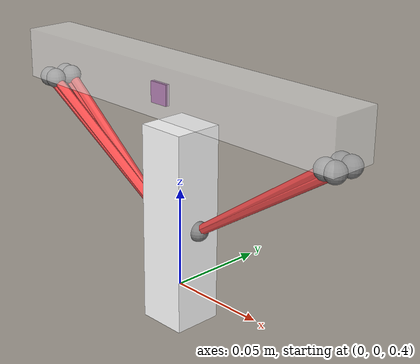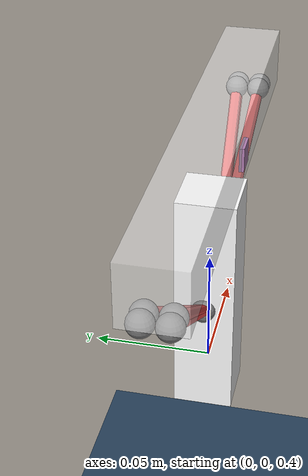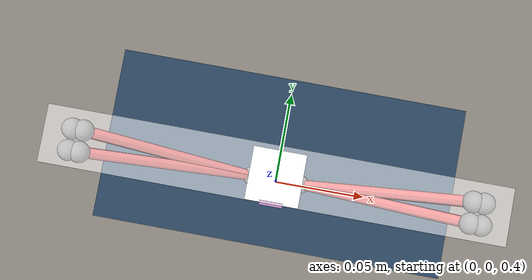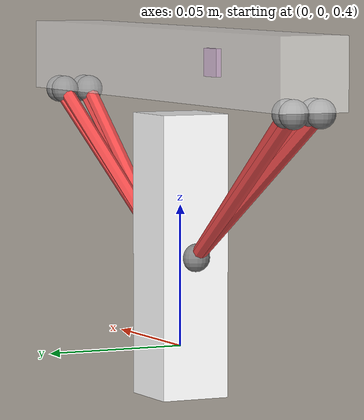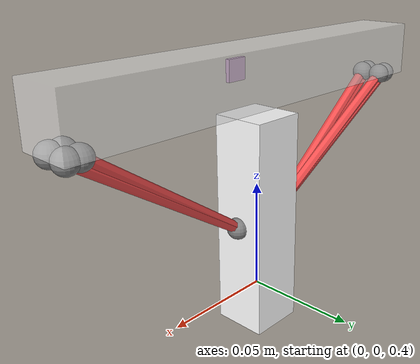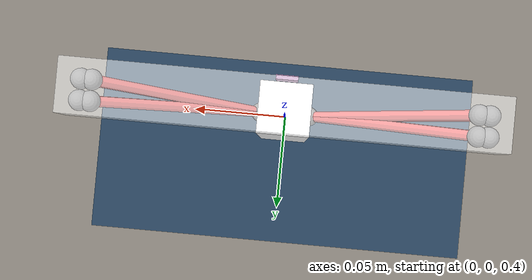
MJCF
<mujoco>
    <!-- Global Options -->
    <option gravity="0 0 -9.81" timestep="0.0001"/>

    <!-- Muscle Class -->
    <default>
        <tendon width="0.0025" rgba="0.95 0.3 0.3 1" limited="false"></tendon>
        <default class="muscle">
            <muscle ctrllimited="true" ctrlrange="0 1" force="10" range="0.4 1.05"></muscle>
        </default>
    </default>

    <!-- Load built-in textures for floor and sky -->
    <asset>
        <texture type="skybox" builtin="gradient" rgb1="0.2 0.2 0.2" rgb2="0 0 0" width="512" height="512"/>

        <texture type="2d" name="groundplane" builtin="checker" mark="edge" rgb1="0.2 0.3 0.4" rgb2="0.1 0.2 0.3"
            markrgb="0.8 0.8 0.8" width="300" height="300"/>
        <material name="groundplane" texture="groundplane" texuniform="true" texrepeat="5 5" reflectance="0.2"/>
    </asset>

    <!-- Parent world for everything to go into -->
    <worldbody>
        <!-- Floor geomerty placed in parent world -->
        <geom name="floor" size="1 1 0.1" type="plane" material="groundplane" pos="0 0 .25"/>
        <!-- Placing top-down light in the parent world -->
        <light name="top-down-light" pos="0 0 2" diffuse="1 1 1" directional="true" dir="-0.25 -0.25 -1"/>
        <!-- Placing Camera at Desired Location -->
        <camera name="fixed" pos="0 -0.3 0.5" xyaxes="1 0 0 0 0.2 1"/>
        <camera name='Angle2' pos="0.167 -0.168 0.5" xyaxes="0.760 0.649 0.000 -0.176 0.206 0.962"/>
        <camera name='Angle3' pos="-0.105 -0.175 0.45" xyaxes="0.864 -0.503 -0.000 -0.136 -0.235 0.962"/>
        <camera name='Angle4' pos="-1.486 -1.710 0.45" xyaxes="0.756 -0.654 -0.000 -0.013 -0.015 1.000"/>
        <camera name='Angle5' pos="0.002 0.004 0.30" xyaxes="1.000 -0.000 -0.000 -0.000 -1.000 0.017"/>
        <camera name='Angle6' pos="0.185 -0.037 0.45" xyaxes="0.243 0.970 0.000 -0.088 0.022 0.996"/>

        <!-- Simulated elements in the world -->
        <body name="StationaryElement" pos="0 0 0.5">
            <geom name="StationaryElement" type="box" size="0.1 0.0125 0.0125" pos="0 0 0" mass="0.5" rgba="1 1 1 0.5" euler="0 0 0"/>

            <!-- End locations for the muscles on stationary body -->
            <site name="Stat-Muscle-R-A" pos="0.090 0.005 -0.0130" size="0.005 0.005 0.005"/>
            <site name="Stat-Muscle-R-B" pos="0.095 0.005 -0.0130" size="0.005 0.005 0.005"/>
            <site name="Stat-Muscle-R-C" pos="0.090 -0.005 -0.0130" size="0.005 0.005 0.005"/>
            <site name="Stat-Muscle-R-D" pos="0.095 -0.005 -0.0130" size="0.005 0.005 0.005"/>

            <site name="Stat-Muscle-L-A" pos="-0.090 0.005 -0.0130" size="0.005 0.005 0.005"/>
            <site name="Stat-Muscle-L-B" pos="-0.095 0.005 -0.0130" size="0.005 0.005 0.005"/>
            <site name="Stat-Muscle-L-C" pos="-0.090 -0.005 -0.0130" size="0.005 0.005 0.005"/>
            <site name="Stat-Muscle-L-D" pos="-0.095 -0.005 -0.0130" size="0.005 0.005 0.005"/>

            <!-- Leg element hanging below -->
            <body name="SwingingElement" pos="0 0 -0.0675">
                <geom name="SwingingElement" type="box" size="0.0125 0.0125 0.05" pos="0 0 0" mass="0.1" rgba="1 1 1 1" euler="0 0 0"/>
                <joint name="ConnectorHinge" type="hinge" pos="0 0 0.0675" axis="0 1 0" limited="false" range="-90 90" damping="0.01"/>

                <!-- End locations for the muscles on the swinging body -->
                <site name="Swing-Muscle-R-A" pos="0.0125 0 0" size="0.005 0.005 0.005"/>
                <site name="Swing-Muscle-R-B" pos="0.0125 0 0" size="0.005 0.005 0.005"/>
                <site name="Swing-Muscle-R-C" pos="0.0125 0 0" size="0.005 0.005 0.005"/>
                <site name="Swing-Muscle-R-D" pos="0.0125 0 0" size="0.005 0.005 0.005"/>

                <site name="Swing-Muscle-L-A" pos="-0.0125 0 0" size="0.005 0.005 0.005"/>
                <site name="Swing-Muscle-L-B" pos="-0.0125 0 0" size="0.005 0.005 0.005"/>
                <site name="Swing-Muscle-L-C" pos="-0.0125 0 0" size="0.005 0.005 0.005"/>
                <site name="Swing-Muscle-L-D" pos="-0.0125 0 0" size="0.005 0.005 0.005"/>
            </body>

            <!-- Reference block for Front-Of-Model Clarity -->
            <body name="FrontFaceReference" pos="0 -0.0125 0">
                <geom name="FrontFaceReference" type="box" size="0.005 0.001 0.005" pos="0 0 0" rgba="0.7 0.5 0.7 1"/>
            </body>

        </body>
    </worldbody>

    <!-- Contact Rules -->
    <contact>
        <exclude body1="StationaryElement" body2="SwingingElement"/>
    </contact>

    <!-- Create the tendon connections -->
    <tendon>
        <!-- Creates tendon for muscle R-A -->
        <spatial name="Tendon-R-A">
            <site site="Stat-Muscle-R-A"/>
            <site site="Swing-Muscle-R-A"/>
        </spatial>
        <!-- Creates tendon for muscle R-B -->
        <spatial name="Tendon-R-B">
            <site site="Stat-Muscle-R-B"/>
            <site site="Swing-Muscle-R-B"/>
        </spatial>
        <!-- Creates tendon for muscle R-C -->
        <spatial name="Tendon-R-C">
            <site site="Stat-Muscle-R-C"/>
            <site site="Swing-Muscle-R-C"/>
        </spatial>
        <!-- Creates tendon for muscle R-D -->
        <spatial name="Tendon-R-D">
            <site site="Stat-Muscle-R-D"/>
            <site site="Swing-Muscle-R-D"/>
        </spatial>

        <!-- Creates tendon for muscle L-A -->
        <spatial name="Tendon-L-A">
            <site site="Stat-Muscle-L-A"/>
            <site site="Swing-Muscle-L-A"/>
        </spatial>
        <!-- Creates tendon for muscle L-B -->
        <spatial name="Tendon-L-B">
            <site site="Stat-Muscle-L-B"/>
            <site site="Swing-Muscle-L-B"/>
        </spatial>
        <!-- Creates tendon for muscle L-C -->
        <spatial name="Tendon-L-C">
            <site site="Stat-Muscle-L-C"/>
            <site site="Swing-Muscle-L-C"/>
        </spatial>
        <!-- Creates tendon for muscle L-D -->
        <spatial name="Tendon-L-D">
            <site site="Stat-Muscle-L-D"/>
            <site site="Swing-Muscle-L-D"/>
        </spatial>

    </tendon>

    <!-- Turns the Tendons into Muscles According to Muscle Class Defined Above -->
    <actuator>
        <muscle name="L-A" tendon="Tendon-L-A" class="muscle"/>
        <muscle name="L-B" tendon="Tendon-L-B" class="muscle"/>
        <muscle name="L-C" tendon="Tendon-L-C" class="muscle"/>
        <muscle name="L-D" tendon="Tendon-L-D" class="muscle"/>

        <muscle name="R-A" tendon="Tendon-R-A" class="muscle"/>
        <muscle name="R-B" tendon="Tendon-R-B" class="muscle"/>
        <muscle name="R-C" tendon="Tendon-R-C" class="muscle"/>
        <muscle name="R-D" tendon="Tendon-R-D" class="muscle"/>
    </actuator>

    <!-- Adds Sensors to the Tendons -->
    <sensor>
        <!-- Length Sensors to all Tendons -->
        <tendonpos name="Len-Tendon-L-A" tendon="Tendon-L-A"/>
        <tendonpos name="Len-Tendon-L-B" tendon="Tendon-L-B"/>
        <tendonpos name="Len-Tendon-L-C" tendon="Tendon-L-C"/>
        <tendonpos name="Len-Tendon-L-D" tendon="Tendon-L-D"/>

        <tendonpos name="Len-Tendon-R-A" tendon="Tendon-R-A"/>
        <tendonpos name="Len-Tendon-R-B" tendon="Tendon-R-B"/>
        <tendonpos name="Len-Tendon-R-C" tendon="Tendon-R-C"/>
        <tendonpos name="Len-Tendon-R-D" tendon="Tendon-R-D"/>

        <!-- Velocity Sensors to all Tendons -->
        <tendonvel name="Vel-Tendon-L-A" tendon="Tendon-L-A"/>
        <tendonvel name="Vel-Tendon-L-B" tendon="Tendon-L-B"/>
        <tendonvel name="Vel-Tendon-L-C" tendon="Tendon-L-C"/>
        <tendonvel name="Vel-Tendon-L-D" tendon="Tendon-L-D"/>

        <tendonvel name="Vel-Tendon-R-A" tendon="Tendon-R-A"/>
        <tendonvel name="Vel-Tendon-R-B" tendon="Tendon-R-B"/>
        <tendonvel name="Vel-Tendon-R-C" tendon="Tendon-R-C"/>
        <tendonvel name="Vel-Tendon-R-D" tendon="Tendon-R-D"/>
    </sensor>

</mujoco>
